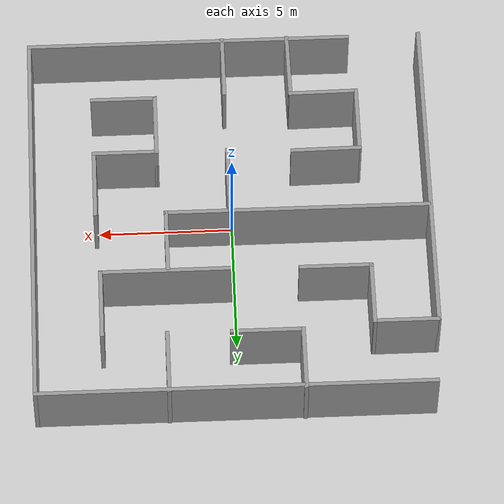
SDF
<?xml version="1.0"?>
<sdf version="1.4">
    <world name="default">
        <!-- A ground plane -->
        <include>
            <uri>model://ground_plane</uri>
        </include>

         <!-- A light source -->
        <include>
            <uri>model://sun</uri>
        </include>

        <!-- Custom world -->
        <include>
            <uri>model://task2_floor</uri>
        </include>
    </world>
</sdf>

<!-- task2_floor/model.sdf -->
<sdf version='1.6'>
  <model name='task2_floor'>
    <pose frame=''>0.032199 0.531441 0 0 -0 0</pose>
    <link name='Wall_0'>
      <collision name='Wall_0_Collision'>
        <geometry>
          <box>
            <size>12.5 0.15 2.5</size>
          </box>
        </geometry>
        <pose frame=''>0 0 1.25 0 -0 0</pose>
      </collision>
      <visual name='Wall_0_Visual'>
        <pose frame=''>0 0 1.25 0 -0 0</pose>
        <geometry>
          <box>
            <size>12.5 0.15 2.5</size>
          </box>
        </geometry>
        <material>
          <script>
            <uri>file://media/materials/scripts/gazebo.material</uri>
            <name>Gazebo/Grey</name>
          </script>
          <ambient>1 1 1 1</ambient>
        </material>
        <meta>
          <layer>0</layer>
        </meta>
      </visual>
      <pose frame=''>-7.41127 -1.29055 0 0 -0 1.5708</pose>
    </link>
    <link name='Wall_1'>
      <collision name='Wall_1_Collision'>
        <geometry>
          <box>
            <size>2.5 0.15 2.5</size>
          </box>
        </geometry>
        <pose frame=''>0 0 1.25 0 -0 0</pose>
      </collision>
      <visual name='Wall_1_Visual'>
        <pose frame=''>0 0 1.25 0 -0 0</pose>
        <geometry>
          <box>
            <size>2.5 0.15 2.5</size>
          </box>
        </geometry>
        <material>
          <script>
            <uri>file://media/materials/scripts/gazebo.material</uri>
            <name>Gazebo/Grey</name>
          </script>
          <ambient>1 1 1 1</ambient>
        </material>
        <meta>
          <layer>0</layer>
        </meta>
      </visual>
      <pose frame=''>-6.23627 4.88445 0 0 -0 0</pose>
    </link>
    <link name='Wall_11'>
      <collision name='Wall_11_Collision'>
        <geometry>
          <box>
            <size>2.75 0.15 2.5</size>
          </box>
        </geometry>
        <pose frame=''>0 0 1.25 0 -0 0</pose>
      </collision>
      <visual name='Wall_11_Visual'>
        <pose frame=''>0 0 1.25 0 -0 0</pose>
        <geometry>
          <box>
            <size>2.75 0.15 2.5</size>
          </box>
        </geometry>
        <material>
          <script>
            <uri>file://media/materials/scripts/gazebo.material</uri>
            <name>Gazebo/Grey</name>
          </script>
          <ambient>1 1 1 1</ambient>
        </material>
        <meta>
          <layer>0</layer>
        </meta>
      </visual>
      <pose frame=''>0.05275 -1.30154 0 0 -0 -1.5708</pose>
    </link>
    <link name='Wall_13'>
      <collision name='Wall_13_Collision'>
        <geometry>
          <box>
            <size>2.65858 0.15 2.5</size>
          </box>
        </geometry>
        <pose frame=''>0 0 1.25 0 -0 0</pose>
      </collision>
      <visual name='Wall_13_Visual'>
        <pose frame=''>0 0 1.25 0 -0 0</pose>
        <geometry>
          <box>
            <size>2.65858 0.15 2.5</size>
          </box>
        </geometry>
        <material>
          <script>
            <uri>file://media/materials/scripts/gazebo.material</uri>
            <name>Gazebo/Grey</name>
          </script>
          <ambient>1 1 1 1</ambient>
        </material>
        <meta>
          <layer>0</layer>
        </meta>
      </visual>
      <pose frame=''>-3.64867 -2.49464 0 0 -0 -3.1294</pose>
    </link>
    <link name='Wall_14'>
      <collision name='Wall_14_Collision'>
        <geometry>
          <box>
            <size>2.6584 0.15 2.5</size>
          </box>
        </geometry>
        <pose frame=''>0 0 1.25 0 -0 0</pose>
      </collision>
      <visual name='Wall_14_Visual'>
        <pose frame=''>0 0 1.25 0 -0 0</pose>
        <geometry>
          <box>
            <size>2.6584 0.15 2.5</size>
          </box>
        </geometry>
        <material>
          <script>
            <uri>file://media/materials/scripts/gazebo.material</uri>
            <name>Gazebo/Grey</name>
          </script>
          <ambient>1 1 1 1</ambient>
        </material>
        <meta>
          <layer>0</layer>
        </meta>
      </visual>
      <pose frame=''>-4.90287 -3.76414 0 0 -0 -1.5708</pose>
    </link>
    <link name='Wall_15'>
      <collision name='Wall_15_Collision'>
        <geometry>
          <box>
            <size>2.628 0.15 2.5</size>
          </box>
        </geometry>
        <pose frame=''>0 0 1.25 0 -0 0</pose>
      </collision>
      <visual name='Wall_15_Visual'>
        <pose frame=''>0 0 1.25 0 -0 0</pose>
        <geometry>
          <box>
            <size>2.628 0.15 2.5</size>
          </box>
        </geometry>
        <material>
          <script>
            <uri>file://media/materials/scripts/gazebo.material</uri>
            <name>Gazebo/Grey</name>
          </script>
          <ambient>1 1 1 1</ambient>
        </material>
        <meta>
          <layer>0</layer>
        </meta>
      </visual>
      <pose frame=''>-3.66396 -5.00304 0 0 -0 0.012345</pose>
    </link>
    <link name='Wall_16'>
      <collision name='Wall_16_Collision'>
        <geometry>
          <box>
            <size>2.628 0.15 2.5</size>
          </box>
        </geometry>
        <pose frame=''>0 0 1.25 0 -0 0</pose>
      </collision>
      <visual name='Wall_16_Visual'>
        <pose frame=''>0 0 1.25 0 -0 0</pose>
        <geometry>
          <box>
            <size>2.628 0.15 2.5</size>
          </box>
        </geometry>
        <material>
          <script>
            <uri>file://media/materials/scripts/gazebo.material</uri>
            <name>Gazebo/Grey</name>
          </script>
          <ambient>1 1 1 1</ambient>
        </material>
        <meta>
          <layer>0</layer>
        </meta>
      </visual>
      <pose frame=''>-2.40976 -6.22665 0 0 -0 -1.55845</pose>
    </link>
    <link name='Wall_18'>
      <collision name='Wall_18_Collision'>
        <geometry>
          <box>
            <size>12.25 0.15 2.5</size>
          </box>
        </geometry>
        <pose frame=''>0 0 1.25 0 -0 0</pose>
      </collision>
      <visual name='Wall_18_Visual'>
        <pose frame=''>0 0 1.25 0 -0 0</pose>
        <geometry>
          <box>
            <size>12.25 0.15 2.5</size>
          </box>
        </geometry>
        <material>
          <script>
            <uri>file://media/materials/scripts/gazebo.material</uri>
            <name>Gazebo/Grey</name>
          </script>
          <ambient>1 1 1 1</ambient>
        </material>
        <meta>
          <layer>0</layer>
        </meta>
      </visual>
      <pose frame=''>1.36126 -7.43496 0 0 -0 0</pose>
    </link>
    <link name='Wall_19'>
      <collision name='Wall_19_Collision'>
        <geometry>
          <box>
            <size>15 0.15 2.5</size>
          </box>
        </geometry>
        <pose frame=''>0 0 1.25 0 -0 0</pose>
      </collision>
      <visual name='Wall_19_Visual'>
        <pose frame=''>0 0 1.25 0 -0 0</pose>
        <geometry>
          <box>
            <size>15 0.15 2.5</size>
          </box>
        </geometry>
        <material>
          <script>
            <uri>file://media/materials/scripts/gazebo.material</uri>
            <name>Gazebo/Grey</name>
          </script>
          <ambient>1 1 1 1</ambient>
        </material>
        <meta>
          <layer>0</layer>
        </meta>
      </visual>
      <pose frame=''>7.41127 -0.009962 0 0 -0 1.5708</pose>
    </link>
    <link name='Wall_2'>
      <collision name='Wall_2_Collision'>
        <geometry>
          <box>
            <size>2.5 0.15 2.5</size>
          </box>
        </geometry>
        <pose frame=''>0 0 1.25 0 -0 0</pose>
      </collision>
      <visual name='Wall_2_Visual'>
        <pose frame=''>0 0 1.25 0 -0 0</pose>
        <geometry>
          <box>
            <size>2.5 0.15 2.5</size>
          </box>
        </geometry>
        <material>
          <script>
            <uri>file://media/materials/scripts/gazebo.material</uri>
            <name>Gazebo/Grey</name>
          </script>
          <ambient>1 1 1 1</ambient>
        </material>
        <meta>
          <layer>0</layer>
        </meta>
      </visual>
      <pose frame=''>-5.06126 3.70945 0 0 -0 -1.5708</pose>
    </link>
    <link name='Wall_20'>
      <collision name='Wall_20_Collision'>
        <geometry>
          <box>
            <size>14.75 0.15 2.5</size>
          </box>
        </geometry>
        <pose frame=''>0 0 1.25 0 -0 0</pose>
      </collision>
      <visual name='Wall_20_Visual'>
        <pose frame=''>0 0 1.25 0 -0 0</pose>
        <geometry>
          <box>
            <size>14.75 0.15 2.5</size>
          </box>
        </geometry>
        <material>
          <script>
            <uri>file://media/materials/scripts/gazebo.material</uri>
            <name>Gazebo/Grey</name>
          </script>
          <ambient>1 1 1 1</ambient>
        </material>
        <meta>
          <layer>0</layer>
        </meta>
      </visual>
      <pose frame=''>0.111265 7.41504 0 0 -0 3.14159</pose>
    </link>
    <link name='Wall_22'>
      <collision name='Wall_22_Collision'>
        <geometry>
          <box>
            <size>2.5 0.15 2.5</size>
          </box>
        </geometry>
        <pose frame=''>0 0 1.25 0 -0 0</pose>
      </collision>
      <visual name='Wall_22_Visual'>
        <pose frame=''>0 0 1.25 0 -0 0</pose>
        <geometry>
          <box>
            <size>2.5 0.15 2.5</size>
          </box>
        </geometry>
        <material>
          <script>
            <uri>file://media/materials/scripts/gazebo.material</uri>
            <name>Gazebo/Grey</name>
          </script>
          <ambient>1 1 1 1</ambient>
        </material>
        <meta>
          <layer>0</layer>
        </meta>
      </visual>
      <pose frame=''>-2.42903 6.29147 0 0 -0 -1.5708</pose>
    </link>
    <link name='Wall_23'>
      <collision name='Wall_23_Collision'>
        <geometry>
          <box>
            <size>2.75 0.15 2.5</size>
          </box>
        </geometry>
        <pose frame=''>0 0 1.25 0 -0 0</pose>
      </collision>
      <visual name='Wall_23_Visual'>
        <pose frame=''>0 0 1.25 0 -0 0</pose>
        <geometry>
          <box>
            <size>2.75 0.15 2.5</size>
          </box>
        </geometry>
        <material>
          <script>
            <uri>file://media/materials/scripts/gazebo.material</uri>
            <name>Gazebo/Grey</name>
          </script>
          <ambient>1 1 1 1</ambient>
        </material>
        <meta>
          <layer>0</layer>
        </meta>
      </visual>
      <pose frame=''>-1.12903 5.11647 0 0 -0 0</pose>
    </link>
    <link name='Wall_25'>
      <collision name='Wall_25_Collision'>
        <geometry>
          <box>
            <size>2.5 0.15 2.5</size>
          </box>
        </geometry>
        <pose frame=''>0 0 1.25 0 -0 0</pose>
      </collision>
      <visual name='Wall_25_Visual'>
        <pose frame=''>0 0 1.25 0 -0 0</pose>
        <geometry>
          <box>
            <size>2.5 0.15 2.5</size>
          </box>
        </geometry>
        <material>
          <script>
            <uri>file://media/materials/scripts/gazebo.material</uri>
            <name>Gazebo/Grey</name>
          </script>
          <ambient>1 1 1 1</ambient>
        </material>
        <meta>
          <layer>0</layer>
        </meta>
      </visual>
      <pose frame=''>2.54822 6.27801 0 0 -0 -1.5708</pose>
    </link>
    <link name='Wall_27'>
      <collision name='Wall_27_Collision'>
        <geometry>
          <box>
            <size>2.75 0.15 2.5</size>
          </box>
        </geometry>
        <pose frame=''>0 0 1.25 0 -0 0</pose>
      </collision>
      <visual name='Wall_27_Visual'>
        <pose frame=''>0 0 1.25 0 -0 0</pose>
        <geometry>
          <box>
            <size>2.75 0.15 2.5</size>
          </box>
        </geometry>
        <material>
          <script>
            <uri>file://media/materials/scripts/gazebo.material</uri>
            <name>Gazebo/Grey</name>
          </script>
          <ambient>1 1 1 1</ambient>
        </material>
        <meta>
          <layer>0</layer>
        </meta>
      </visual>
      <pose frame=''>5.05736 -1.3267 0 0 -0 -1.5708</pose>
    </link>
    <link name='Wall_28'>
      <collision name='Wall_28_Collision'>
        <geometry>
          <box>
            <size>2.5 0.15 2.5</size>
          </box>
        </geometry>
        <pose frame=''>0 0 1.25 0 -0 0</pose>
      </collision>
      <visual name='Wall_28_Visual'>
        <pose frame=''>0 0 1.25 0 -0 0</pose>
        <geometry>
          <box>
            <size>2.5 0.15 2.5</size>
          </box>
        </geometry>
        <material>
          <script>
            <uri>file://media/materials/scripts/gazebo.material</uri>
            <name>Gazebo/Grey</name>
          </script>
          <ambient>1 1 1 1</ambient>
        </material>
        <meta>
          <layer>0</layer>
        </meta>
      </visual>
      <pose frame=''>3.88236 -2.6267 0 0 -0 3.14159</pose>
    </link>
    <link name='Wall_29'>
      <collision name='Wall_29_Collision'>
        <geometry>
          <box>
            <size>2.5 0.15 2.5</size>
          </box>
        </geometry>
        <pose frame=''>0 0 1.25 0 -0 0</pose>
      </collision>
      <visual name='Wall_29_Visual'>
        <pose frame=''>0 0 1.25 0 -0 0</pose>
        <geometry>
          <box>
            <size>2.5 0.15 2.5</size>
          </box>
        </geometry>
        <material>
          <script>
            <uri>file://media/materials/scripts/gazebo.material</uri>
            <name>Gazebo/Grey</name>
          </script>
          <ambient>1 1 1 1</ambient>
        </material>
        <meta>
          <layer>0</layer>
        </meta>
      </visual>
      <pose frame=''>2.70736 -3.8017 0 0 -0 -1.5708</pose>
    </link>
    <link name='Wall_3'>
      <collision name='Wall_3_Collision'>
        <geometry>
          <box>
            <size>2.75 0.15 2.5</size>
          </box>
        </geometry>
        <pose frame=''>0 0 1.25 0 -0 0</pose>
      </collision>
      <visual name='Wall_3_Visual'>
        <pose frame=''>0 0 1.25 0 -0 0</pose>
        <geometry>
          <box>
            <size>2.75 0.15 2.5</size>
          </box>
        </geometry>
        <material>
          <script>
            <uri>file://media/materials/scripts/gazebo.material</uri>
            <name>Gazebo/Grey</name>
          </script>
          <ambient>1 1 1 1</ambient>
        </material>
        <meta>
          <layer>0</layer>
        </meta>
      </visual>
      <pose frame=''>-3.76126 2.53445 0 0 -0 0</pose>
    </link>
    <link name='Wall_30'>
      <collision name='Wall_30_Collision'>
        <geometry>
          <box>
            <size>2.5 0.15 2.5</size>
          </box>
        </geometry>
        <pose frame=''>0 0 1.25 0 -0 0</pose>
      </collision>
      <visual name='Wall_30_Visual'>
        <pose frame=''>0 0 1.25 0 -0 0</pose>
        <geometry>
          <box>
            <size>2.5 0.15 2.5</size>
          </box>
        </geometry>
        <material>
          <script>
            <uri>file://media/materials/scripts/gazebo.material</uri>
            <name>Gazebo/Grey</name>
          </script>
          <ambient>1 1 1 1</ambient>
        </material>
        <meta>
          <layer>0</layer>
        </meta>
      </visual>
      <pose frame=''>3.88236 -4.9767 0 0 -0 0</pose>
    </link>
    <link name='Wall_32'>
      <collision name='Wall_32_Collision'>
        <geometry>
          <box>
            <size>2.5 0.15 2.5</size>
          </box>
        </geometry>
        <pose frame=''>0 0 1.25 0 -0 0</pose>
      </collision>
      <visual name='Wall_32_Visual'>
        <pose frame=''>0 0 1.25 0 -0 0</pose>
        <geometry>
          <box>
            <size>2.5 0.15 2.5</size>
          </box>
        </geometry>
        <material>
          <script>
            <uri>file://media/materials/scripts/gazebo.material</uri>
            <name>Gazebo/Grey</name>
          </script>
          <ambient>1 1 1 1</ambient>
        </material>
        <meta>
          <layer>0</layer>
        </meta>
      </visual>
      <pose frame=''>0.067623 -6.27914 0 0 -0 1.5708</pose>
    </link>
    <link name='Wall_5'>
      <collision name='Wall_5_Collision'>
        <geometry>
          <box>
            <size>5 0.15 2.5</size>
          </box>
        </geometry>
        <pose frame=''>0 0 1.25 0 -0 0</pose>
      </collision>
      <visual name='Wall_5_Visual'>
        <pose frame=''>0 0 1.25 0 -0 0</pose>
        <geometry>
          <box>
            <size>5 0.15 2.5</size>
          </box>
        </geometry>
        <material>
          <script>
            <uri>file://media/materials/scripts/gazebo.material</uri>
            <name>Gazebo/Grey</name>
          </script>
          <ambient>1 1 1 1</ambient>
        </material>
        <meta>
          <layer>0</layer>
        </meta>
      </visual>
      <pose frame=''>2.50834 2.47627 0 0 -0 0</pose>
    </link>
    <link name='Wall_6'>
      <collision name='Wall_6_Collision'>
        <geometry>
          <box>
            <size>2.75 0.15 2.5</size>
          </box>
        </geometry>
        <pose frame=''>0 0 1.25 0 -0 0</pose>
      </collision>
      <visual name='Wall_6_Visual'>
        <pose frame=''>0 0 1.25 0 -0 0</pose>
        <geometry>
          <box>
            <size>2.75 0.15 2.5</size>
          </box>
        </geometry>
        <material>
          <script>
            <uri>file://media/materials/scripts/gazebo.material</uri>
            <name>Gazebo/Grey</name>
          </script>
          <ambient>1 1 1 1</ambient>
        </material>
        <meta>
          <layer>0</layer>
        </meta>
      </visual>
      <pose frame=''>4.93334 3.77627 0 0 -0 1.5708</pose>
    </link>
    <link name='Wall_8'>
      <collision name='Wall_8_Collision'>
        <geometry>
          <box>
            <size>10 0.15 2.5</size>
          </box>
        </geometry>
        <pose frame=''>0 0 1.25 0 -0 0</pose>
      </collision>
      <visual name='Wall_8_Visual'>
        <pose frame=''>0 0 1.25 0 -0 0</pose>
        <geometry>
          <box>
            <size>10 0.15 2.5</size>
          </box>
        </geometry>
        <material>
          <script>
            <uri>file://media/materials/scripts/gazebo.material</uri>
            <name>Gazebo/Grey</name>
          </script>
          <ambient>1 1 1 1</ambient>
        </material>
        <meta>
          <layer>0</layer>
        </meta>
      </visual>
      <pose frame=''>-2.48626 0.029054 0 0 -0 0</pose>
    </link>
    <link name='Wall_9'>
      <collision name='Wall_9_Collision'>
        <geometry>
          <box>
            <size>2.5 0.15 2.5</size>
          </box>
        </geometry>
        <pose frame=''>0 0 1.25 0 -0 0</pose>
      </collision>
      <visual name='Wall_9_Visual'>
        <pose frame=''>0 0 1.25 0 -0 0</pose>
        <geometry>
          <box>
            <size>2.5 0.15 2.5</size>
          </box>
        </geometry>
        <material>
          <script>
            <uri>file://media/materials/scripts/gazebo.material</uri>
            <name>Gazebo/Grey</name>
          </script>
          <ambient>1 1 1 1</ambient>
        </material>
        <meta>
          <layer>0</layer>
        </meta>
      </visual>
      <pose frame=''>2.43873 1.20405 0 0 -0 1.5708</pose>
    </link>
    <static>1</static>
  </model>
</sdf>
